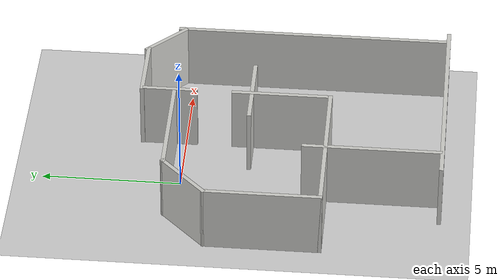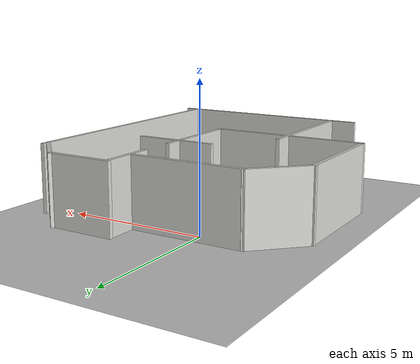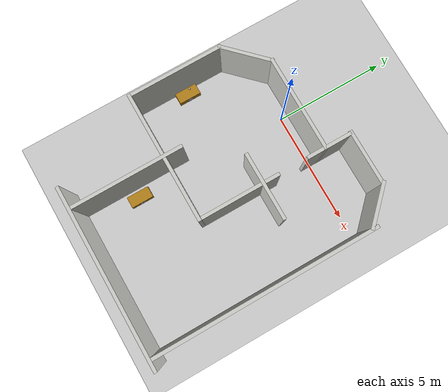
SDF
<sdf version="1.7">
 <world name="default">
  <model name="ground_plane">
   <static>1</static>
   <link name="link">
    <collision name="collision">
     <geometry><plane><normal>0 0 1</normal><size>100 100</size></plane></geometry>
     <surface>
      <contact><collide_bitmask>65535</collide_bitmask></contact>
      <friction><ode><mu>100</mu><mu2>50</mu2></ode></friction>
     </surface>
    </collision>
    <visual name="visual">
     <cast_shadows>0</cast_shadows>
     <geometry><plane><normal>0 0 1</normal><size>100 100</size></plane></geometry>
     <material>
      <script><uri>file://media/materials/scripts/gazebo.material</uri><name>Gazebo/Grey</name></script>
     </material>
    </visual>
   </link>
  </model>
  <light name="sun" type="directional">
   <pose>0 0 10 0 -0 0</pose>
   <diffuse>0.8 0.8 0.8 1</diffuse>
   <specular>0.2 0.2 0.2 1</specular>
   <attenuation>
    <range>1000</range>
    <constant>0.9</constant>
    <linear>0.01</linear>
    <quadratic>0.001</quadratic>
   </attenuation>
   <direction>-0.5 0.1 -0.9</direction>
   <spot><inner_angle>0</inner_angle><outer_angle>0</outer_angle><falloff>0</falloff></spot>
  </light>
  <gravity>0 0 -9.81</gravity>
  <magnetic_field>6e-06 2.3e-05 -4.2e-05</magnetic_field>
  <atmosphere type="adiabatic"/>
  <physics type="ode">
   <max_step_size>0.001</max_step_size>
   <real_time_factor>1</real_time_factor>
   <real_time_update_rate>1000</real_time_update_rate>
  </physics>
  <scene><ambient>0.4 0.4 0.4 1</ambient><background>0.7 0.7 0.7 1</background><shadows>1</shadows></scene>
  <spherical_coordinates>
   <surface_model>EARTH_WGS84</surface_model>
   <latitude_deg>0</latitude_deg>
   <longitude_deg>0</longitude_deg>
   <elevation>0</elevation>
   <heading_deg>0</heading_deg>
  </spherical_coordinates>
  <model name="kitchen_no_sink_walls">
   <pose>-0.487707 -2.40386 0 0 -0 0</pose>
   <link name="Wall_0">
    <collision name="Wall_0_Collision">
     <geometry><box><size>4.27 0.15 2.5</size></box></geometry>
     <pose>0 0 1.25 0 -0 0</pose>
    </collision>
    <visual name="Wall_0_Visual">
     <pose>0 0 1.25 0 -0 0</pose>
     <geometry><box><size>4.27 0.15 2.5</size></box></geometry>
     <material>
      <script><uri>file://media/materials/scripts/gazebo.material</uri><name>Gazebo/CeilingTiled</name></script>
      <ambient>1 1 1 1</ambient>
     </material>
     <meta><layer>0</layer></meta>
    </visual>
    <pose>-2.82197 -0.790533 0 0 -0 1.5708</pose>
   </link>
   <link name="Wall_11">
    <collision name="Wall_11_Collision">
     <geometry><box><size>2.34557 0.15 2.5</size></box></geometry>
     <pose>0 0 1.25 0 -0 0</pose>
    </collision>
    <visual name="Wall_11_Visual">
     <pose>0 0 1.25 0 -0 0</pose>
     <geometry><box><size>2.34557 0.15 2.5</size></box></geometry>
     <material>
      <script><uri>file://media/materials/scripts/gazebo.material</uri><name>Gazebo/CeilingTiled</name></script>
      <ambient>1 1 1 1</ambient>
     </material>
     <meta><layer>0</layer></meta>
    </visual>
    <pose>-2.04447 2.04447 0 0 -0 0.783788</pose>
   </link>
   <link name="Wall_4">
    <collision name="Wall_4_Collision">
     <geometry><box><size>5.825 0.15 2.5</size></box></geometry>
     <pose>0 0 1.25 0 -0 0</pose>
    </collision>
    <visual name="Wall_4_Visual">
     <pose>0 0 1.25 0 -0 0</pose>
     <geometry><box><size>5.825 0.15 2.5</size></box></geometry>
     <material>
      <script><uri>file://media/materials/scripts/gazebo.material</uri><name>Gazebo/CeilingTiled</name></script>
      <ambient>1 1 1 1</ambient>
     </material>
     <meta><layer>0</layer></meta>
    </visual>
    <pose>0.015533 -2.85053 0 0 -0 0</pose>
   </link>
   <link name="Wall_7">
    <collision name="Wall_7_Collision">
     <geometry><box><size>3.5 0.15 2.5</size></box></geometry>
     <pose>-1 0 1.25 0 -0 0</pose>
    </collision>
    <visual name="Wall_7_Visual">
     <pose>-1 0 1.25 0 -0 0</pose>
     <geometry><box><size>3.5 0.15 2.5</size></box></geometry>
     <material>
      <script><uri>file://media/materials/scripts/gazebo.material</uri><name>Gazebo/CeilingTiled</name></script>
      <ambient>1 1 1 1</ambient>
     </material>
     <meta><layer>0</layer></meta>
    </visual>
    <pose>2.85303 -0.015533 0 0 -0 1.5708</pose>
   </link>
   <link name="Wall_8">
    <collision name="Wall_8_Collision">
     <geometry><box><size>2 0.15 2.5</size></box></geometry>
     <pose>3 0 1.25 0 -0 0</pose>
    </collision>
    <visual name="Wall_8_Visual">
     <pose>3 0 1.25 0 -0 0</pose>
     <geometry><box><size>2 0.15 2.5</size></box></geometry>
     <material>
      <script><uri>file://media/materials/scripts/gazebo.material</uri><name>Gazebo/CeilingTiled</name></script>
      <ambient>1 1 1 1</ambient>
     </material>
     <meta><layer>0</layer></meta>
    </visual>
    <pose>2.85303 -0.015533 0 0 -0 1.5708</pose>
   </link>
   <link name="Wall_9">
    <collision name="Wall_9_Collision">
     <geometry><box><size>4.27 0.15 2.5</size></box></geometry>
     <pose>0 0 1.25 0 -0 0</pose>
    </collision>
    <visual name="Wall_9_Visual">
     <pose>0 0 1.25 0 -0 0</pose>
     <geometry><box><size>4.27 0.15 2.5</size></box></geometry>
     <material>
      <script><uri>file://media/materials/scripts/gazebo.material</uri><name>Gazebo/CeilingTiled</name></script>
      <ambient>1 1 1 1</ambient>
     </material>
     <meta><layer>0</layer></meta>
    </visual>
    <pose>0.793033 2.81947 0 0 -0 3.14159</pose>
   </link>
   <link name="Wall_20">
    <collision name="Wall_20_Collision">
     <geometry><box><size>10 0.15 2.5</size></box></geometry>
     <pose>0 0 1.25 0 -0 0</pose>
    </collision>
    <visual name="Wall_20_Visual">
     <pose>0 0 1.25 0 -0 0</pose>
     <geometry><box><size>10 0.15 2.5</size></box></geometry>
     <material>
      <script><uri>file://media/materials/scripts/gazebo.material</uri><name>Gazebo/CeilingTiled</name></script>
      <ambient>1 1 1 1</ambient>
     </material>
     <meta><layer>0</layer></meta>
    </visual>
    <pose>6.5 -2.0 0 0 0 1.5708</pose>
   </link>
   <link name="Wall_21">
    <collision name="Wall_21_Collision">
     <geometry><box><size>2.5 0.15 2.5</size></box></geometry>
     <pose>0 0 1.25 0 -0 0</pose>
    </collision>
    <visual name="Wall_21_Visual">
     <pose>0 0 1.25 0 -0 0</pose>
     <geometry><box><size>2.5 0.15 2.5</size></box></geometry>
     <material>
      <script><uri>file://media/materials/scripts/gazebo.material</uri><name>Gazebo/CeilingTiled</name></script>
      <ambient>1 1 1 1</ambient>
     </material>
     <meta><layer>0</layer></meta>
    </visual>
    <pose>4 4.0 0 0 -0 0</pose>
   </link>
   <link name="Wall_22">
    <collision name="Wall_22_Collision">
     <geometry><box><size>2 0.15 2.5</size></box></geometry>
     <pose>0 0 1.25 0 -0 0</pose>
    </collision>
    <visual name="Wall_22_Visual">
     <pose>0 0 1.25 0 -0 0</pose>
     <geometry><box><size>2 0.15 2.5</size></box></geometry>
     <material>
      <script><uri>file://media/materials/scripts/gazebo.material</uri><name>Gazebo/CeilingTiled</name></script>
      <ambient>1 1 1 1</ambient>
     </material>
     <meta><layer>0</layer></meta>
    </visual>
    <pose>5.8 3.4 0 0 -0 -0.783788</pose>
   </link>
   <link name="Wall_23">
    <collision name="Wall_23_Collision">
     <geometry><box><size>8.0 0.15 2.5</size></box></geometry>
     <pose>0 0 1.25 0 -0 0</pose>
    </collision>
    <visual name="Wall_23_Visual">
     <pose>0 0 1.25 0 -0 0</pose>
     <geometry><box><size>8.0 0.15 2.5</size></box></geometry>
     <material>
      <script><uri>file://media/materials/scripts/gazebo.material</uri><name>Gazebo/CeilingTiled</name></script>
      <ambient>1 1 1 1</ambient>
     </material>
     <meta><layer>0</layer></meta>
    </visual>
    <pose>3 -7.0 0 0 -0 0</pose>
   </link>
   <link name="Wall_24">
    <collision name="Wall_24_Collision">
     <geometry><box><size>5 0.15 2.5</size></box></geometry>
     <pose>0 0 1.25 0 -0 0</pose>
    </collision>
    <visual name="Wall_24_Visual">
     <pose>0 0 1.25 0 -0 0</pose>
     <geometry><box><size>5 0.15 2.5</size></box></geometry>
     <material>
      <script><uri>file://media/materials/scripts/gazebo.material</uri><name>Gazebo/CeilingTiled</name></script>
      <ambient>1 1 1 1</ambient>
     </material>
     <meta><layer>0</layer></meta>
    </visual>
    <pose>0 -4.5 0 0 -0 1.5709</pose>
   </link>
   <link name="Wall_30">
    <collision name="Wall_30_Collision">
     <geometry><box><size>3.0 0.15 2.5</size></box></geometry>
     <pose>0 0 1.25 0 -0 0</pose>
    </collision>
    <visual name="Wall_30_Visual">
     <pose>0 0 1.25 0 -0 0</pose>
     <geometry><box><size>3.0 0.15 2.5</size></box></geometry>
     <material>
      <script><uri>file://media/materials/scripts/gazebo.material</uri><name>Gazebo/CeilingTiled</name></script>
      <ambient>1 1 1 1</ambient>
     </material>
     <meta><layer>0</layer></meta>
    </visual>
    <pose>3.0 0.0 0 0 -0 0</pose>
   </link>
   <static>1</static>
  </model>
  <include>
   <uri>model://env_exam_pick_surface</uri>
   <pose>-3 -3 0.15 0 0 -1.5709</pose>
   <static>1</static>
  </include>
  <include>
   <uri>model://env_exam_place_surface</uri>
   <pose>0.0 -7 0.15 0 0 -1.5709</pose>
   <static>1</static>
  </include>
  <include><uri>model://aruco_cube_exam_id63</uri><pose>-2.9 -2.9 1.0 0 0 0</pose><static>0</static></include>
  <plugin name="gazebo_link_attacher" filename="libgazebo_link_attacher.so"/>
 </world>
</sdf>

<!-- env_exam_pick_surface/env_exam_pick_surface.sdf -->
<sdf version="1.4">
  <model name="env_exam_pick_surface">
    <static>true</static>

    <link name="link">
      <!-- Original pick surface inertial -->
      <inertial>
        <mass>1.0</mass>
        <inertia>
          <ixx>0.083</ixx>
          <ixy>0.0</ixy>
          <ixz>0.0</ixz>
          <iyy>0.083</iyy>
          <iyz>0.0</iyz>
          <izz>0.083</izz>
        </inertia>
      </inertial>

      <!-- Original pick surface collision -->
      <collision name="pick_surface_collision">
        <geometry>
          <box>
            <size>1.0 0.5 0.3</size>
          </box>
        </geometry>
      </collision>

      <!-- Original pick surface visual -->
      <visual name="pick_surface_visual">
        <material>
          <ambient>0.7 0.5 0.1 1</ambient>
          <diffuse>0.7 0.5 0.1 1</diffuse>
          <specular>0.5 0.5 0.5 1</specular>
          <emissive>0 0 0 1</emissive>
        </material>
        <geometry>
          <box>
            <size>1.0 0.5 0.3</size>
          </box>
        </geometry>
      </visual>

      <!-- ArUco marker mounted on one lateral side (+X face) -->
      <!-- Box visual for the marker -->
      <visual name="aruco_visual">
        <pose>0.0 0.25 0.0 1.5708 0 0</pose>
        <geometry>
          <box>
            <size>0.25 0.25 0.001</size>
          </box>
        </geometry>
        <material>
          <script>
	    <uri>model://aruco_marker_original_26/material/scripts</uri>
	    <uri>model://aruco_marker_original_26/material/textures</uri>
            <name>Aruco/aruco_marker_original_26</name>
          </script>
        </material>
      </visual>

      <!-- Collision for the marker -->
      <collision name="aruco_collision">
        <pose>0.5005 0 0.15 1.5708 0 0</pose>
        <geometry>
          <box>
            <size>0.25 0.25 0.001</size>
          </box>
        </geometry>
        <surface>
          <bounce/>
          <friction>
            <ode/>
          </friction>
          <contact>
            <ode/>
          </contact>
        </surface>
      </collision>

    </link>
  </model>
</sdf>

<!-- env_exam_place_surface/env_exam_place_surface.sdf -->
<sdf version="1.4">
  <model name="env_exam_place_surface">
    <static>true</static>

    <link name="link">
      <!-- Original pick surface inertial -->
      <inertial>
        <mass>1.0</mass>
        <inertia>
          <ixx>0.083</ixx>
          <ixy>0.0</ixy>
          <ixz>0.0</ixz>
          <iyy>0.083</iyy>
          <iyz>0.0</iyz>
          <izz>0.083</izz>
        </inertia>
      </inertial>

      <collision name="place_surface_collision">
        <geometry>
          <box>
            <size>1.0 0.5 0.3</size>
          </box>
        </geometry>
      </collision>

      <visual name="place_surface_visual">
        <material>
          <ambient>0.7 0.5 0.1 1</ambient>
          <diffuse>0.7 0.5 0.1 1</diffuse>
          <specular>0.5 0.5 0.5 1</specular>
          <emissive>0 0 0 1</emissive>
        </material>
        <geometry>
          <box>
            <size>1.0 0.5 0.3</size>
          </box>
        </geometry>
      </visual>

      <!-- ArUco marker mounted on one lateral side (+X face) -->
      <!-- Box visual for the marker -->
      <visual name="aruco_visual">
        <pose>0.0 0.25 0.0 1.5708 0 0</pose>
        <geometry>
          <box>
            <size>0.25 0.25 0.001</size>
          </box>
        </geometry>
        <material>
          <script>
	    <uri>model://aruco_marker_original_238/material/scripts</uri>
	    <uri>model://aruco_marker_original_238/material/textures</uri>
            <name>Aruco/aruco_marker_original_238</name>
          </script>
        </material>
      </visual>

      <!-- Collision for the marker -->
      <collision name="aruco_collision">
        <pose>0.5005 0 0.15 1.5708 0 0</pose>
        <geometry>
          <box>
            <size>0.25 0.25 0.001</size>
          </box>
        </geometry>
        <surface>
          <bounce/>
          <friction>
            <ode/>
          </friction>
          <contact>
            <ode/>
          </contact>
        </surface>
      </collision>

    </link>
  </model>
</sdf>

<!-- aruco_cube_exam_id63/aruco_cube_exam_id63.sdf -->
<sdf version="1.4">
  <model name="aruco_cube_exam_id63">
    <static>0</static>
    <link name="link">

      <inertial>
        <mass>0.05</mass>
        <inertia>
          <ixx>0.000052083</ixx>
          <ixy>0.0</ixy>
          <ixz>0.0</ixz>
          <iyy>0.000052083</iyy>
          <iyz>0.0</iyz>
          <izz>0.000020833</izz>
        </inertia>
      </inertial>

      <collision name="cube_collision">
        <geometry>
          <box>
            <size>0.07 0.07 0.07</size>
          </box>
        </geometry>

        <surface>
          <friction>
            <ode>
              <mu>40.0</mu>
              <mu2>40.0</mu2>
              <slip1>0.0</slip1>
              <slip2>0.0</slip2>
            </ode>
          </friction>
          <contact>
            <ode>
              <kp>1000000.0</kp>
              <kd>100.0</kd>
              <min_depth>0.0025</min_depth>
              <max_vel>1.0</max_vel>
            </ode>
          </contact>
        </surface>

      </collision>

      <!-- Original pick surface visual -->
      <visual name="cube_visual">
        <material>
          <ambient>1 1 1 1</ambient>
          <diffuse>1 1 1 1</diffuse>
          <specular>0.5 0.5 0.5 1</specular>
          <emissive>0 0 0 1</emissive>
        </material>
        <geometry>
          <box>
            <size>0.07 0.07 0.07</size>
          </box>
        </geometry>
      </visual>

      <!-- ArUco marker mounted on one lateral side (+X face) -->
      <!-- Box visual for the marker -->
      <visual name="aruco_visual">
        <pose>0.0 0.0 0.035 0 0 0</pose>
        <geometry>
          <box>
            <size>0.07 0.07 0.001</size>
          </box>
        </geometry>
        <material>
          <script>
          <uri>model://aruco_marker_original_63/material/scripts</uri>
          <uri>model://aruco_marker_original_63/material/textures</uri>
                <name>Aruco/aruco_marker_original_63</name>
          </script>
        </material>
      </visual>

      <velocity_decay>
        <linear>0.000000</linear>
        <angular>0.000000</angular>
      </velocity_decay>
      <self_collide>0</self_collide>
      <kinematic>0</kinematic>
      <gravity>1</gravity>
    </link>
  </model>
</sdf>
